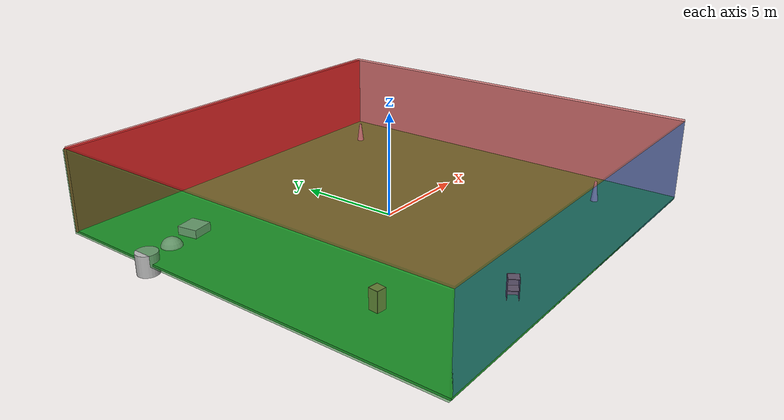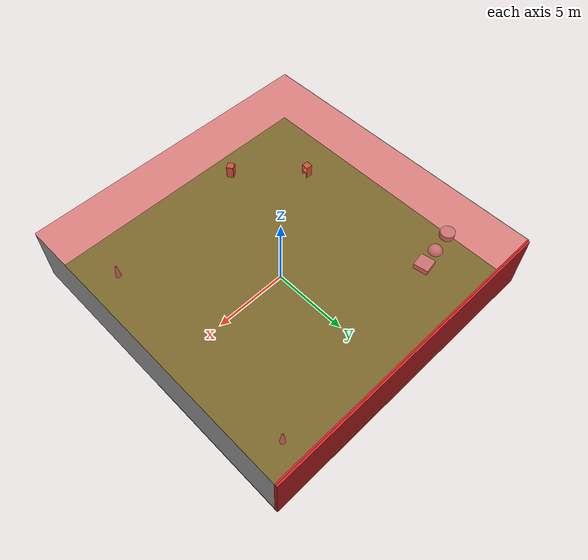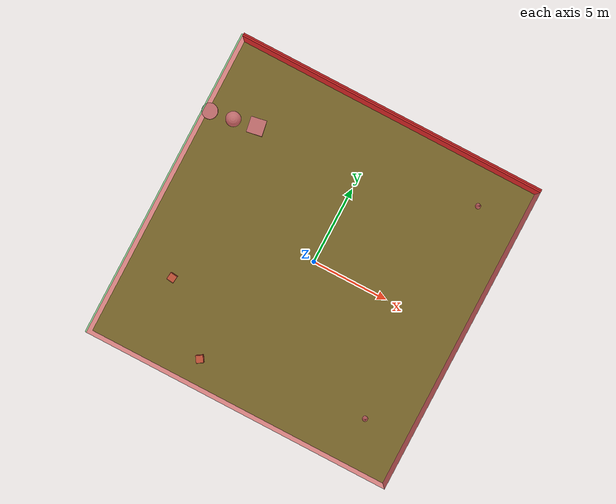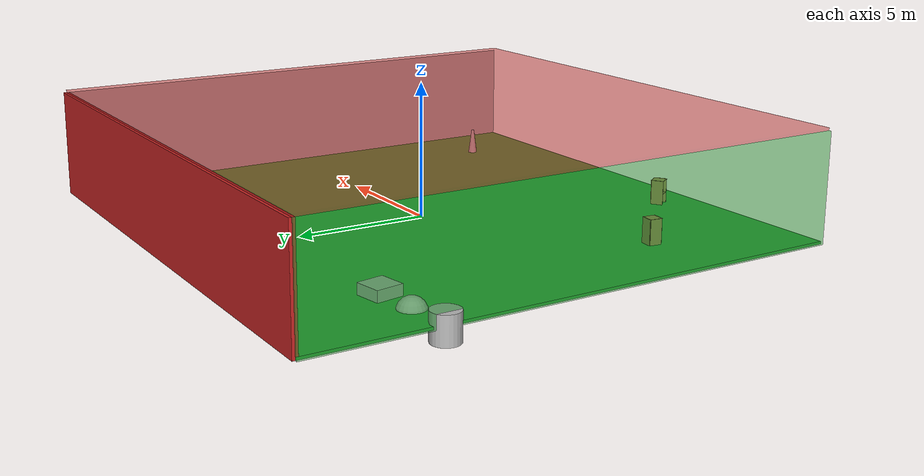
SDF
<sdf version="1.4">
 <world name="default">
  <physics type="ode">
   <max_step_size>0.001</max_step_size>
   <real_time_factor>1</real_time_factor>
   <real_time_update_rate>1000</real_time_update_rate>
   <gravity>0 0 -9.8</gravity>
  </physics>
  <scene><ambient>0.4 0.4 0.4 1</ambient><background>0.7 0.7 0.7 1</background><shadows>1</shadows></scene>
  <model name="Surrounding">
   <static>1</static>
   <link name="Ceiling">
    <collision name="Ceiling_Collision"><geometry><box><size>20 20 0.1</size></box></geometry></collision>
    <visual name="Ceiling_Visual">
     <geometry><box><size>20 20 0.1</size></box></geometry>
     <material>
      <script><uri>file://media/materials/scripts/gazebo.material</uri><name>Gazebo/RedTransparent</name></script>
     </material>
    </visual>
    <pose>0 0 4.05 0 0 0</pose>
   </link>
   <link name="Wall_South">
    <collision name="Wall_South_Collision">
     <geometry><box><size>20 0 4</size></box></geometry>
     <pose>0 0 2 0 -0 0</pose>
    </collision>
    <visual name="Wall_South_Visual">
     <pose>0 0 2 0 -0 0</pose>
     <geometry><box><size>20 0 4</size></box></geometry>
     <material>
      <script><uri>file://media/materials/scripts/gazebo.material</uri><name>Gazebo/BlueTransparent</name></script>
     </material>
    </visual>
    <velocity_decay><linear>0</linear><angular>0</angular></velocity_decay>
    <pose>0 -10 0 0 -0 0</pose>
   </link>
   <link name="Wall_East">
    <collision name="Wall_21_Collision">
     <geometry><box><size>20 0 4</size></box></geometry>
     <pose>0 0 2 0 -0 0</pose>
    </collision>
    <visual name="Wall_21_Visual">
     <pose>0 0 2 0 -0 0</pose>
     <geometry><box><size>20 0 4</size></box></geometry>
     <material>
      <script><uri>file://media/materials/scripts/gazebo.material</uri><name>Gazebo/CloudySky</name></script>
     </material>
    </visual>
    <velocity_decay><linear>0</linear><angular>0</angular></velocity_decay>
    <pose>10 0 0 0 -0 1.5708</pose>
   </link>
   <link name="Wall_North">
    <collision name="Wall_22_Collision">
     <geometry><box><size>20 0.2 4</size></box></geometry>
     <pose>0 0 2 0 -0 0</pose>
    </collision>
    <visual name="Wall_22_Visual">
     <pose>0 0 2 0 -0 0</pose>
     <geometry><box><size>20 0.2 4</size></box></geometry>
     <material>
      <script><uri>file://media/materials/scripts/gazebo.material</uri><name>Gazebo/Red</name></script>
     </material>
    </visual>
    <velocity_decay><linear>0</linear><angular>0</angular></velocity_decay>
    <pose>0 10 0 0 -0 0</pose>
   </link>
   <link name="Wall_West">
    <collision name="Wall_23_Collision">
     <geometry><box><size>20 0.2 4</size></box></geometry>
     <pose>0 0 2 0 -0 0</pose>
    </collision>
    <visual name="Wall_23_Visual">
     <pose>0 0 2 0 -0 0</pose>
     <geometry><box><size>20 0.2 4</size></box></geometry>
     <material>
      <script><uri>file://media/materials/scripts/gazebo.material</uri><name>Gazebo/GreenTransparent</name></script>
     </material>
    </visual>
    <velocity_decay><linear>0</linear><angular>0</angular></velocity_decay>
    <pose>-10 0 0 0 0 -1.5708</pose>
   </link>
   <link name="Ground_link">
    <collision name="collision">
     <pose>0 0 .05 0 -0 0</pose>
     <geometry><box><size>20 20 0.1</size></box></geometry>
    </collision>
    <visual name="visual">
     <pose>0 0 .05 0 -0 0</pose>
     <geometry><box><size>20 20 0.1</size></box></geometry>
     <material>
      <script><uri>file://media/materials/scripts/gazebo.material</uri><name>Gazebo/GreenGlow</name></script>
     </material>
    </visual>
   </link>
   <static>1</static>
  </model>
  <spherical_coordinates>
   <surface_model>EARTH_WGS84</surface_model>
   <latitude_deg>0</latitude_deg>
   <longitude_deg>0</longitude_deg>
   <elevation>0</elevation>
   <heading_deg>0</heading_deg>
  </spherical_coordinates>
  <light name="lightball_0" type="diffuse">
   <diffuse>0.8 0.8 0.8 1</diffuse>
   <specular>0.2 0.2 0.2 1</specular>
   <attenuation>
    <range>100</range>
    <constant>0.7</constant>
    <linear>0.01</linear>
    <quadratic>0.001</quadratic>
   </attenuation>
   <direction>-0.5 0.1 -0.9</direction>
   <pose>-2.1793737031 -9.06290551758 0.998866349846 0 0 0</pose>
  </light>
  <light name="lightball_1" type="diffuse">
   <diffuse>0.8 0.8 0.8 1</diffuse>
   <specular>0.2 0.2 0.2 1</specular>
   <attenuation>
    <range>100</range>
    <constant>0.7</constant>
    <linear>0.01</linear>
    <quadratic>0.001</quadratic>
   </attenuation>
   <direction>-0.5 0.1 -0.9</direction>
   <pose>2.29789129507 3.50009926869 1.29045216102 0 0 0</pose>
  </light>
  <light name="lightball_2" type="diffuse">
   <diffuse>0.8 0.8 0.8 1</diffuse>
   <specular>0.2 0.2 0.2 1</specular>
   <attenuation>
    <range>100</range>
    <constant>0.7</constant>
    <linear>0.01</linear>
    <quadratic>0.001</quadratic>
   </attenuation>
   <direction>-0.5 0.1 -0.9</direction>
   <pose>5.20257430723 3.7409863549 2.32864419136 0 0 0</pose>
  </light>
  <light name="lightball_3" type="diffuse">
   <diffuse>0.8 0.8 0.8 1</diffuse>
   <specular>0.2 0.2 0.2 1</specular>
   <attenuation>
    <range>100</range>
    <constant>0.7</constant>
    <linear>0.01</linear>
    <quadratic>0.001</quadratic>
   </attenuation>
   <direction>-0.5 0.1 -0.9</direction>
   <pose>-7.56700529604 -5.30903337882 3.62795151325 0 0 0</pose>
  </light>
  <light name="lightball_4" type="diffuse">
   <diffuse>0.8 0.8 0.8 1</diffuse>
   <specular>0.2 0.2 0.2 1</specular>
   <attenuation>
    <range>100</range>
    <constant>0.7</constant>
    <linear>0.01</linear>
    <quadratic>0.001</quadratic>
   </attenuation>
   <direction>-0.5 0.1 -0.9</direction>
   <pose>5.54484933217 -6.73357030308 3.32134317474 0 0 0</pose>
  </light>
  <include><uri>model://cabinet</uri><pose>-7.15927686697 -4.86792188677 0 0 0 3.02650891754</pose></include>
  <include>
   <uri>model://textured_shapes</uri>
   <pose>-8.40454182989 5.41728266348 0 0 0 1.7379981222</pose>
  </include>
  <include><uri>model://cabinet</uri><pose>-3.38804575975 -8.46457678229 0 0 0 0.574349649993</pose></include>
  <include>
   <uri>model://construction_cone</uri>
   <pose>7.22834846421 -7.01606032648 0 0 0 1.18392382547</pose>
  </include>
  <include>
   <uri>model://construction_cone</uri>
   <pose>7.28775688389 7.6691394927 0 0 0 2.7647826588</pose>
  </include>
 </world>
</sdf>

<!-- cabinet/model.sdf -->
<sdf version="1.5">
  <model name="cabinet">
    <static>true</static>
    <link name="cabinet_bottom_plate">
      <inertial>
        <pose>0 0 -1 0 0 0</pose>
        <inertia>
          <ixx>2.050000</ixx>
          <ixy>0</ixy>
          <ixz>0</ixz>
          <iyy>2.050000</iyy>
          <iyz>0</iyz>
          <izz>2.050000</izz>
        </inertia>
        <mass>25.000000</mass>
      </inertial>
      <collision name="cabinet_bottom_plate_geom">
        <pose>0 0 0.010000 0 0 0</pose>
        <geometry>
          <box>
            <size>0.450000 0.450000 0.020000</size>
          </box>
        </geometry>
      </collision>
      <visual name="cabinet_bottom_plate_geom_visual">
        <pose>0 0 0.010000 0 0 0</pose>
        <geometry>
          <box>
            <size>0.450000 0.450000 0.020000</size>
          </box>
        </geometry>
        <material>
          <script>
            <uri>model://media/materials/scripts/gazebo.material</uri>
            <name>Gazebo/Wood</name>
          </script>
        </material>
      </visual>
      <collision name="cabinet_bottom_plate_geom_cabinet_back_plate">
        <pose>0.235000 0 0.510000 0 0 0</pose>
        <geometry>
          <box>
            <size>0.020000 0.450000 1.020000</size>
          </box>
        </geometry>
      </collision>
      <visual name="cabinet_bottom_plate_geom_cabinet_back_plate_visual">
        <pose>0.235000 0 0.510000 0 0 0</pose>
        <geometry>
          <box>
            <size>0.020000 0.450000 1.020000</size>
          </box>
        </geometry>
        <material>
          <script>
            <uri>model://media/materials/scripts/gazebo.material</uri>
            <name>Gazebo/Wood</name>
          </script>
        </material>
      </visual>
      <collision name="cabinet_bottom_plate_geom_cabinet_left_plate">
        <pose>0 0.235000 0.510000 0 0 0</pose>
        <geometry>
          <box>
            <size>0.450000 0.020000 1.020000</size>
          </box>
        </geometry>
      </collision>
      <visual name="cabinet_bottom_plate_geom_cabinet_left_plate_visual">
        <pose>0 0.235000 0.510000 0 0 0</pose>
        <geometry>
          <box>
            <size>0.450000 0.020000 1.020000</size>
          </box>
        </geometry>
        <material>
          <script>
            <uri>model://media/materials/scripts/gazebo.material</uri>
            <name>Gazebo/Wood</name>
          </script>
        </material>
      </visual>
      <collision name="cabinet_bottom_plate_geom_cabinet_middle_plate">
        <pose>0 0 0.510000 0 0 0</pose>
        <geometry>
          <box>
            <size>0.450000 0.450000 0.020000</size>
          </box>
        </geometry>
      </collision>
      <visual name="cabinet_bottom_plate_geom_cabinet_middle_plate_visual">
        <pose>0 0 0.510000 0 0 0</pose>
        <geometry>
          <box>
            <size>0.450000 0.450000 0.020000</size>
          </box>
        </geometry>
        <material>
          <script>
            <uri>model://media/materials/scripts/gazebo.material</uri>
            <name>Gazebo/Wood</name>
          </script>
        </material>
      </visual>
      <collision name="cabinet_bottom_plate_geom_cabinet_right_plate">
        <pose>0 -0.235000 0.510000 0 0 0</pose>
        <geometry>
          <box>
            <size>0.450000 0.020000 1.020000</size>
          </box>
        </geometry>
      </collision>
      <visual name="cabinet_bottom_plate_geom_cabinet_right_plate_visual">
        <pose>0 -0.235000 0.510000 0 0 0</pose>
        <geometry>
          <box>
            <size>0.450000 0.020000 1.020000</size>
          </box>
        </geometry>
        <material>
          <script>
            <uri>model://media/materials/scripts/gazebo.material</uri>
            <name>Gazebo/Wood</name>
          </script>
        </material>
      </visual>
      <collision name="cabinet_bottom_plate_geom_cabinet_top_plate">
        <pose>0 0 1.010000 0 0 0</pose>
        <geometry>
          <box>
            <size>0.450000 0.450000 0.020000</size>
          </box>
        </geometry>
      </collision>
      <visual name="cabinet_bottom_plate_geom_cabinet_top_plate_visual">
        <pose>0 0 1.010000 0 0 0</pose>
        <geometry>
          <box>
            <size>0.450000 0.450000 0.020000</size>
          </box>
        </geometry>
        <material>
          <script>
            <uri>model://media/materials/scripts/gazebo.material</uri>
            <name>Gazebo/Wood</name>
          </script>
        </material>
      </visual>
    </link>
  </model>
</sdf>

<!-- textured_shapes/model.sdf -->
<sdf version="1.6">
  <model name="textured_shapes">
    <pose>0 0 0.5 0 0 0</pose>
    <link name="box">
      <pose>0 -1.5 0 0 0 0</pose>
      <collision name="collision">
        <geometry>
          <box>
            <size>1 1 1</size>
          </box>
        </geometry>
      </collision>
      <visual name="visual">
        <geometry>
          <box>
            <size>1 1 1</size>
          </box>
        </geometry>
        <material>
          <script>
            <uri>model://../model_source/models/textured_shapes/materials/scripts</uri>
            <uri>model://../model_source/models/textured_shapes/materials/textures</uri>
            <name>TexturedShape/Squares</name>
          </script>
        </material>
      </visual>
    </link>
    <link name="sphere">
      <collision name="collision">
        <geometry>
          <sphere>
            <radius>0.5</radius>
          </sphere>
        </geometry>
      </collision>
      <visual name="visual">
        <geometry>
          <sphere>
            <radius>0.5</radius>
          </sphere>
        </geometry>
        <material>
          <script>
            <uri>model://../model_source/models/textured_shapes/materials/scripts</uri>
            <uri>model://../model_source/models/textured_shapes/materials/textures</uri>
            <name>TexturedShape/Squares</name>
          </script>
        </material>
      </visual>
    </link>
    <link name="cylinder">
      <pose>0 1.5 0 0 0 0</pose>
      <collision name="collision">
        <geometry>
          <cylinder>
            <radius>0.5</radius>
            <length>1</length>
          </cylinder>
        </geometry>
      </collision>
      <visual name="visual">
        <geometry>
          <cylinder>
            <radius>0.5</radius>
            <length>1</length>
          </cylinder>
        </geometry>
        <material>
          <script>
            <uri>model://../model_source/models/textured_shapes/materials/scripts</uri>
            <uri>model://../model_source/models/textured_shapes/materials/textures</uri>
            <name>TexturedShape/Squares</name>
          </script>
        </material>
      </visual>
    </link>
  </model>
</sdf>

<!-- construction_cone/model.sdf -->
<sdf version="1.5">
  <model name="Construction Cone">
    <link name="link">
      <collision name="collision">
        <geometry>
          <mesh>
            <scale>10 10 10</scale>
            <uri>file://isr-testbed/construction_cone/meshes/construction_cone.dae</uri>
          </mesh>
        </geometry>
      </collision>
      <visual name="visual">
        <geometry>
          <mesh>
            <scale>10 10 10</scale>
            <uri>file://isr-testbed/construction_cone/meshes/construction_cone.dae</uri>
          </mesh>
        </geometry>
      </visual>
    </link>
  </model>
</sdf>
